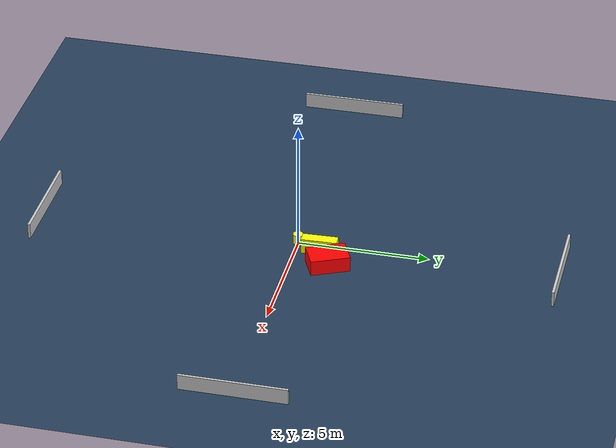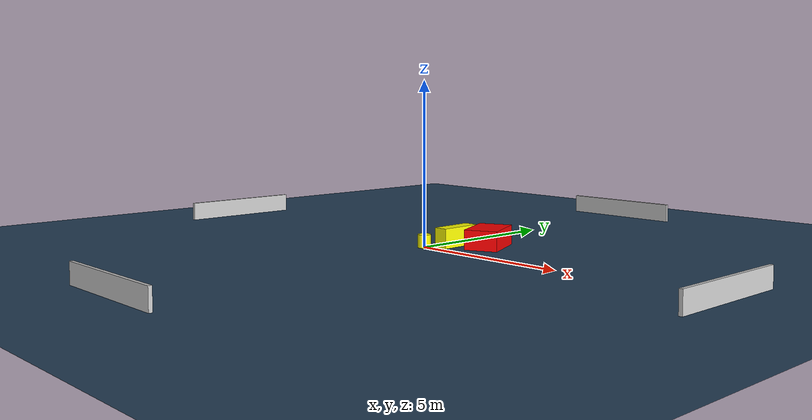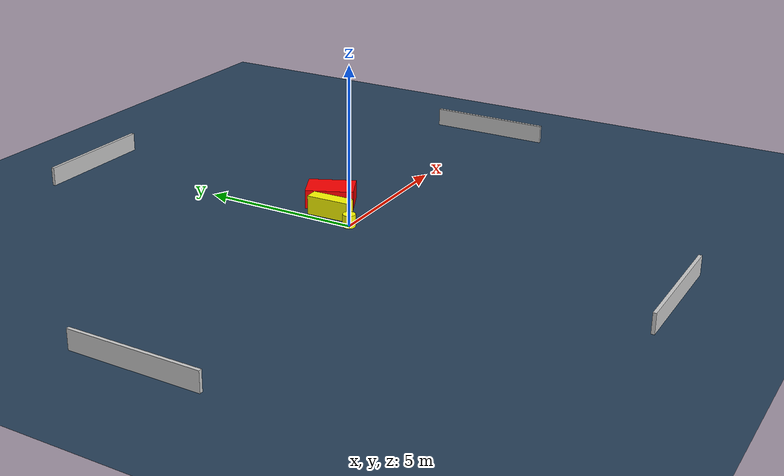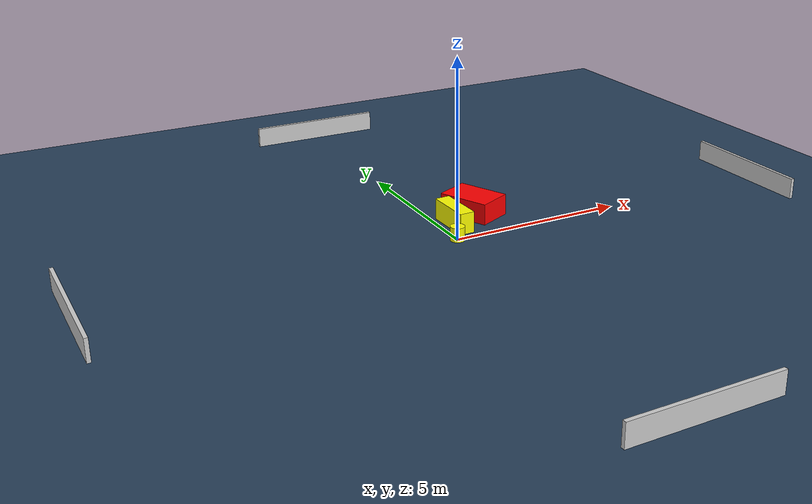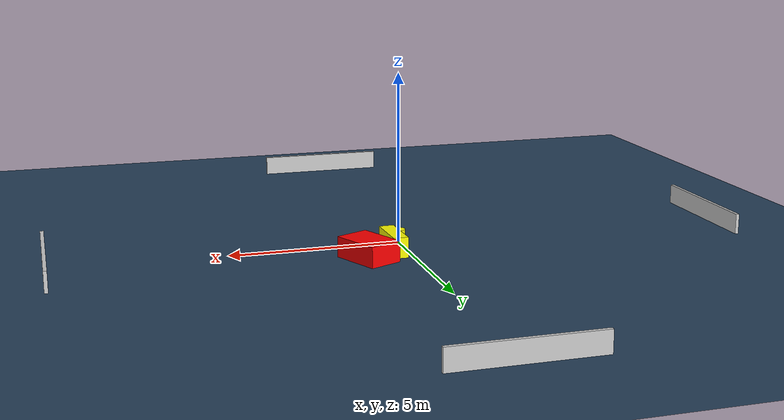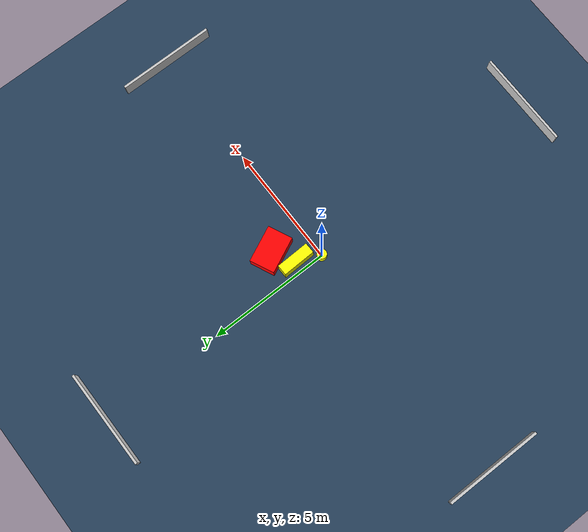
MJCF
<?xml version="1.0" ?>
<mujoco model="generated_environment">
  <option timestep="0.01" integrator="RK4" cone="elliptic"/>
  <default>
    <geom density="1"/>
  </default>
  <asset>
    <texture builtin="gradient" height="3072" name="skybox" rgb1="0.3 0.5 0.7" rgb2="0 0 0" type="skybox" width="512"/>
    <texture builtin="checker" height="300" name="groundplane" rgb1="0.2 0.3 0.4" rgb2="0.1 0.2 0.3" type="2d" width="300"/>
    <material name="groundplane" reflectance="0.2" texrepeat="5 5" texture="groundplane"/>
  </asset>
  <worldbody>
    <light dir="0 0 -1" directional="true" pos="0 0 1.5"/>
    <geom condim="3" friction="0.5 0.005 0.001" material="groundplane" name="floor" pos="0 0 0" size="0 0 0.05" type="plane"/>
    <body name="walls">
      <geom name="wall_1" condim="4" pos="-10.0 0.0 0.3" rgba="0.800000011920929 0.800000011920929 0.800000011920929 1.0" size="0.05 2.0 0.3" type="box"/>
      <geom name="wall_2" condim="4" pos="10.0 0.0 0.3" rgba="0.800000011920929 0.800000011920929 0.800000011920929 1.0" size="0.05 2.0 0.3" type="box"/>
      <geom name="wall_3" condim="4" pos="0.0 -10.0 0.3" rgba="0.800000011920929 0.800000011920929 0.800000011920929 1.0" size="2.0 0.05 0.3" type="box"/>
      <geom name="wall_4" condim="4" pos="0.0 10.0 0.3" rgba="0.800000011920929 0.800000011920929 0.800000011920929 1.0" size="2.0 0.05 0.3" type="box"/>
    </body>
    <body name="robot">
      <joint name="joint_x" type="slide" pos="0 0 0" axis="1 0 0"/>
      <joint name="joint_y" type="slide" pos="0 0 0" axis="0 1 0"/>
      <geom name="robot" type="cylinder" pos="0.0 0.0 0.2" size="0.2 0.2 0.0" mass="5.0" friction="1.0 0.005 0.0001" condim="4" rgba="1.0 1.0 0.0 1.0"/>
    </body>
    <body name="obstacle_1_movable">
      <geom name="obstacle_1_movable" condim="4" pos="0.41562951459316766 0.9210541471474153 0.3" euler="0 0 181.71831712886356" friction="0.0 0.005 0.001" rgba="1.0 1.0 0.0 1.0" size="0.21634286613255824 0.6807989582153422 0.3" type="box" mass="0.1"/>
      <joint type="free"/>
    </body>
    <body name="obstacle_2_static">
      <geom name="obstacle_2_static" condim="4" pos="1.2838815083260635 1.4259435200389419 0.3" euler="0 0 24.889802059009032" friction="0.0 0.005 0.001" rgba="1.0 0.0 0.0 1.0" size="0.507445798528859 0.7525638432558222 0.3" type="box"/>
    </body>
  </worldbody>
  <actuator>
    <motor name="actuator_x" joint="joint_x" gear="1" ctrlrange="-1 1"/>
    <motor name="actuator_y" joint="joint_y" gear="1" ctrlrange="-1 1"/>
  </actuator>
</mujoco>
